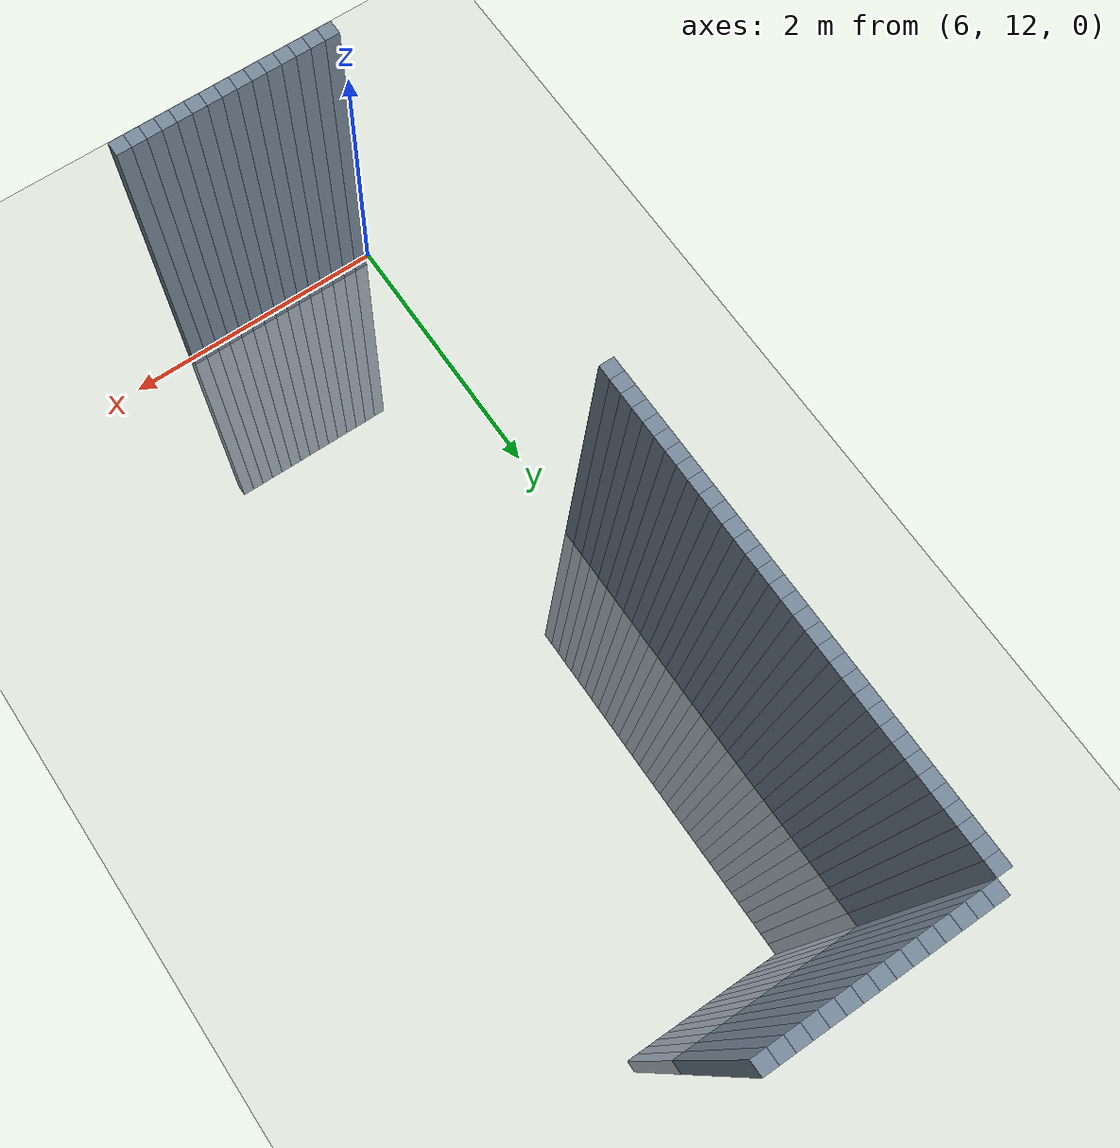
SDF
<sdf version="1.6">
 <world name="default">
  <model name="ground_plane">
   <static>1</static>
   <link name="link">
    <collision name="collision">
     <geometry><plane><normal>0 0 1</normal><size>100 100</size></plane></geometry>
     <surface><friction><ode><mu>100</mu><mu2>50</mu2></ode></friction></surface>
    </collision>
    <visual name="visual">
     <cast_shadows>0</cast_shadows>
     <geometry><plane><normal>0 0 1</normal><size>100 100</size></plane></geometry>
     <material>
      <script><uri>file://media/materials/scripts/gazebo.material</uri><name>Gazebo/Grey</name></script>
     </material>
    </visual>
   </link>
  </model>
  <model name="unit_cylinder_328">
   <static>1</static>
   <pose>6 14.7 0 0 -0 0</pose>
   <link name="link">
    <inertial>
     <mass>1</mass>
     <inertia><ixx>0.145833</ixx><ixy>0</ixy><ixz>0</ixz><iyy>0.145833</iyy><iyz>0</iyz><izz>0.125</izz></inertia>
    </inertial>
    <collision name="collision"><geometry><box><size>0.1 0.1 5</size></box></geometry></collision>
    <visual name="visual">
     <geometry><box><size>0.1 0.1 5</size></box></geometry>
     <material><ambient>0.466667 0.533333 0.6 1</ambient><diffuse>0.466667 0.533333 0.6 1</diffuse></material>
     <material>
      <script><name>Gazebo/Grey</name><uri>file://media/materials/scripts/gazebo.material</uri></script>
     </material>
    </visual>
   </link>
  </model>
  <model name="unit_cylinder_329">
   <static>1</static>
   <pose>6 14.8 0 0 -0 0</pose>
   <link name="link">
    <inertial>
     <mass>1</mass>
     <inertia><ixx>0.145833</ixx><ixy>0</ixy><ixz>0</ixz><iyy>0.145833</iyy><iyz>0</iyz><izz>0.125</izz></inertia>
    </inertial>
    <collision name="collision"><geometry><box><size>0.1 0.1 5</size></box></geometry></collision>
    <visual name="visual">
     <geometry><box><size>0.1 0.1 5</size></box></geometry>
     <material><ambient>0.466667 0.533333 0.6 1</ambient><diffuse>0.466667 0.533333 0.6 1</diffuse></material>
     <material>
      <script><name>Gazebo/Grey</name><uri>file://media/materials/scripts/gazebo.material</uri></script>
     </material>
    </visual>
   </link>
  </model>
  <model name="unit_cylinder_330">
   <static>1</static>
   <pose>6 14.9 0 0 -0 0</pose>
   <link name="link">
    <inertial>
     <mass>1</mass>
     <inertia><ixx>0.145833</ixx><ixy>0</ixy><ixz>0</ixz><iyy>0.145833</iyy><iyz>0</iyz><izz>0.125</izz></inertia>
    </inertial>
    <collision name="collision"><geometry><box><size>0.1 0.1 5</size></box></geometry></collision>
    <visual name="visual">
     <geometry><box><size>0.1 0.1 5</size></box></geometry>
     <material><ambient>0.466667 0.533333 0.6 1</ambient><diffuse>0.466667 0.533333 0.6 1</diffuse></material>
     <material>
      <script><name>Gazebo/Grey</name><uri>file://media/materials/scripts/gazebo.material</uri></script>
     </material>
    </visual>
   </link>
  </model>
  <model name="unit_cylinder_331">
   <static>1</static>
   <pose>6 15 0 0 -0 0</pose>
   <link name="link">
    <inertial>
     <mass>1</mass>
     <inertia><ixx>0.145833</ixx><ixy>0</ixy><ixz>0</ixz><iyy>0.145833</iyy><iyz>0</iyz><izz>0.125</izz></inertia>
    </inertial>
    <collision name="collision"><geometry><box><size>0.1 0.1 5</size></box></geometry></collision>
    <visual name="visual">
     <geometry><box><size>0.1 0.1 5</size></box></geometry>
     <material><ambient>0.466667 0.533333 0.6 1</ambient><diffuse>0.466667 0.533333 0.6 1</diffuse></material>
     <material>
      <script><name>Gazebo/Grey</name><uri>file://media/materials/scripts/gazebo.material</uri></script>
     </material>
    </visual>
   </link>
  </model>
  <model name="unit_cylinder_332">
   <static>1</static>
   <pose>6 15.1 0 0 -0 0</pose>
   <link name="link">
    <inertial>
     <mass>1</mass>
     <inertia><ixx>0.145833</ixx><ixy>0</ixy><ixz>0</ixz><iyy>0.145833</iyy><iyz>0</iyz><izz>0.125</izz></inertia>
    </inertial>
    <collision name="collision"><geometry><box><size>0.1 0.1 5</size></box></geometry></collision>
    <visual name="visual">
     <geometry><box><size>0.1 0.1 5</size></box></geometry>
     <material><ambient>0.466667 0.533333 0.6 1</ambient><diffuse>0.466667 0.533333 0.6 1</diffuse></material>
     <material>
      <script><name>Gazebo/Grey</name><uri>file://media/materials/scripts/gazebo.material</uri></script>
     </material>
    </visual>
   </link>
  </model>
  <model name="unit_cylinder_333">
   <static>1</static>
   <pose>6 15.2 0 0 -0 0</pose>
   <link name="link">
    <inertial>
     <mass>1</mass>
     <inertia><ixx>0.145833</ixx><ixy>0</ixy><ixz>0</ixz><iyy>0.145833</iyy><iyz>0</iyz><izz>0.125</izz></inertia>
    </inertial>
    <collision name="collision"><geometry><box><size>0.1 0.1 5</size></box></geometry></collision>
    <visual name="visual">
     <geometry><box><size>0.1 0.1 5</size></box></geometry>
     <material><ambient>0.466667 0.533333 0.6 1</ambient><diffuse>0.466667 0.533333 0.6 1</diffuse></material>
     <material>
      <script><name>Gazebo/Grey</name><uri>file://media/materials/scripts/gazebo.material</uri></script>
     </material>
    </visual>
   </link>
  </model>
  <model name="unit_cylinder_334">
   <static>1</static>
   <pose>6 15.3 0 0 -0 0</pose>
   <link name="link">
    <inertial>
     <mass>1</mass>
     <inertia><ixx>0.145833</ixx><ixy>0</ixy><ixz>0</ixz><iyy>0.145833</iyy><iyz>0</iyz><izz>0.125</izz></inertia>
    </inertial>
    <collision name="collision"><geometry><box><size>0.1 0.1 5</size></box></geometry></collision>
    <visual name="visual">
     <geometry><box><size>0.1 0.1 5</size></box></geometry>
     <material><ambient>0.466667 0.533333 0.6 1</ambient><diffuse>0.466667 0.533333 0.6 1</diffuse></material>
     <material>
      <script><name>Gazebo/Grey</name><uri>file://media/materials/scripts/gazebo.material</uri></script>
     </material>
    </visual>
   </link>
  </model>
  <model name="unit_cylinder_335">
   <static>1</static>
   <pose>6 15.4 0 0 -0 0</pose>
   <link name="link">
    <inertial>
     <mass>1</mass>
     <inertia><ixx>0.145833</ixx><ixy>0</ixy><ixz>0</ixz><iyy>0.145833</iyy><iyz>0</iyz><izz>0.125</izz></inertia>
    </inertial>
    <collision name="collision"><geometry><box><size>0.1 0.1 5</size></box></geometry></collision>
    <visual name="visual">
     <geometry><box><size>0.1 0.1 5</size></box></geometry>
     <material><ambient>0.466667 0.533333 0.6 1</ambient><diffuse>0.466667 0.533333 0.6 1</diffuse></material>
     <material>
      <script><name>Gazebo/Grey</name><uri>file://media/materials/scripts/gazebo.material</uri></script>
     </material>
    </visual>
   </link>
  </model>
  <model name="unit_cylinder_336">
   <static>1</static>
   <pose>6 15.5 0 0 -0 0</pose>
   <link name="link">
    <inertial>
     <mass>1</mass>
     <inertia><ixx>0.145833</ixx><ixy>0</ixy><ixz>0</ixz><iyy>0.145833</iyy><iyz>0</iyz><izz>0.125</izz></inertia>
    </inertial>
    <collision name="collision"><geometry><box><size>0.1 0.1 5</size></box></geometry></collision>
    <visual name="visual">
     <geometry><box><size>0.1 0.1 5</size></box></geometry>
     <material><ambient>0.466667 0.533333 0.6 1</ambient><diffuse>0.466667 0.533333 0.6 1</diffuse></material>
     <material>
      <script><name>Gazebo/Grey</name><uri>file://media/materials/scripts/gazebo.material</uri></script>
     </material>
    </visual>
   </link>
  </model>
  <model name="unit_cylinder_337">
   <static>1</static>
   <pose>6 15.6 0 0 -0 0</pose>
   <link name="link">
    <inertial>
     <mass>1</mass>
     <inertia><ixx>0.145833</ixx><ixy>0</ixy><ixz>0</ixz><iyy>0.145833</iyy><iyz>0</iyz><izz>0.125</izz></inertia>
    </inertial>
    <collision name="collision"><geometry><box><size>0.1 0.1 5</size></box></geometry></collision>
    <visual name="visual">
     <geometry><box><size>0.1 0.1 5</size></box></geometry>
     <material><ambient>0.466667 0.533333 0.6 1</ambient><diffuse>0.466667 0.533333 0.6 1</diffuse></material>
     <material>
      <script><name>Gazebo/Grey</name><uri>file://media/materials/scripts/gazebo.material</uri></script>
     </material>
    </visual>
   </link>
  </model>
  <model name="unit_cylinder_338">
   <static>1</static>
   <pose>6 15.7 0 0 -0 0</pose>
   <link name="link">
    <inertial>
     <mass>1</mass>
     <inertia><ixx>0.145833</ixx><ixy>0</ixy><ixz>0</ixz><iyy>0.145833</iyy><iyz>0</iyz><izz>0.125</izz></inertia>
    </inertial>
    <collision name="collision"><geometry><box><size>0.1 0.1 5</size></box></geometry></collision>
    <visual name="visual">
     <geometry><box><size>0.1 0.1 5</size></box></geometry>
     <material><ambient>0.466667 0.533333 0.6 1</ambient><diffuse>0.466667 0.533333 0.6 1</diffuse></material>
     <material>
      <script><name>Gazebo/Grey</name><uri>file://media/materials/scripts/gazebo.material</uri></script>
     </material>
    </visual>
   </link>
  </model>
  <model name="unit_cylinder_339">
   <static>1</static>
   <pose>6 15.8 0 0 -0 0</pose>
   <link name="link">
    <inertial>
     <mass>1</mass>
     <inertia><ixx>0.145833</ixx><ixy>0</ixy><ixz>0</ixz><iyy>0.145833</iyy><iyz>0</iyz><izz>0.125</izz></inertia>
    </inertial>
    <collision name="collision"><geometry><box><size>0.1 0.1 5</size></box></geometry></collision>
    <visual name="visual">
     <geometry><box><size>0.1 0.1 5</size></box></geometry>
     <material><ambient>0.466667 0.533333 0.6 1</ambient><diffuse>0.466667 0.533333 0.6 1</diffuse></material>
     <material>
      <script><name>Gazebo/Grey</name><uri>file://media/materials/scripts/gazebo.material</uri></script>
     </material>
    </visual>
   </link>
  </model>
  <model name="unit_cylinder_340">
   <static>1</static>
   <pose>6 15.9 0 0 -0 0</pose>
   <link name="link">
    <inertial>
     <mass>1</mass>
     <inertia><ixx>0.145833</ixx><ixy>0</ixy><ixz>0</ixz><iyy>0.145833</iyy><iyz>0</iyz><izz>0.125</izz></inertia>
    </inertial>
    <collision name="collision"><geometry><box><size>0.1 0.1 5</size></box></geometry></collision>
    <visual name="visual">
     <geometry><box><size>0.1 0.1 5</size></box></geometry>
     <material><ambient>0.466667 0.533333 0.6 1</ambient><diffuse>0.466667 0.533333 0.6 1</diffuse></material>
     <material>
      <script><name>Gazebo/Grey</name><uri>file://media/materials/scripts/gazebo.material</uri></script>
     </material>
    </visual>
   </link>
  </model>
  <model name="unit_cylinder_341">
   <static>1</static>
   <pose>6 16 0 0 -0 0</pose>
   <link name="link">
    <inertial>
     <mass>1</mass>
     <inertia><ixx>0.145833</ixx><ixy>0</ixy><ixz>0</ixz><iyy>0.145833</iyy><iyz>0</iyz><izz>0.125</izz></inertia>
    </inertial>
    <collision name="collision"><geometry><box><size>0.1 0.1 5</size></box></geometry></collision>
    <visual name="visual">
     <geometry><box><size>0.1 0.1 5</size></box></geometry>
     <material><ambient>0.466667 0.533333 0.6 1</ambient><diffuse>0.466667 0.533333 0.6 1</diffuse></material>
     <material>
      <script><name>Gazebo/Grey</name><uri>file://media/materials/scripts/gazebo.material</uri></script>
     </material>
    </visual>
   </link>
  </model>
  <model name="unit_cylinder_342">
   <static>1</static>
   <pose>6 16.1 0 0 -0 0</pose>
   <link name="link">
    <inertial>
     <mass>1</mass>
     <inertia><ixx>0.145833</ixx><ixy>0</ixy><ixz>0</ixz><iyy>0.145833</iyy><iyz>0</iyz><izz>0.125</izz></inertia>
    </inertial>
    <collision name="collision"><geometry><box><size>0.1 0.1 5</size></box></geometry></collision>
    <visual name="visual">
     <geometry><box><size>0.1 0.1 5</size></box></geometry>
     <material><ambient>0.466667 0.533333 0.6 1</ambient><diffuse>0.466667 0.533333 0.6 1</diffuse></material>
     <material>
      <script><name>Gazebo/Grey</name><uri>file://media/materials/scripts/gazebo.material</uri></script>
     </material>
    </visual>
   </link>
  </model>
  <model name="unit_cylinder_343">
   <static>1</static>
   <pose>6 16.2 0 0 -0 0</pose>
   <link name="link">
    <inertial>
     <mass>1</mass>
     <inertia><ixx>0.145833</ixx><ixy>0</ixy><ixz>0</ixz><iyy>0.145833</iyy><iyz>0</iyz><izz>0.125</izz></inertia>
    </inertial>
    <collision name="collision"><geometry><box><size>0.1 0.1 5</size></box></geometry></collision>
    <visual name="visual">
     <geometry><box><size>0.1 0.1 5</size></box></geometry>
     <material><ambient>0.466667 0.533333 0.6 1</ambient><diffuse>0.466667 0.533333 0.6 1</diffuse></material>
     <material>
      <script><name>Gazebo/Grey</name><uri>file://media/materials/scripts/gazebo.material</uri></script>
     </material>
    </visual>
   </link>
  </model>
  <model name="unit_cylinder_344">
   <static>1</static>
   <pose>6 16.3 0 0 -0 0</pose>
   <link name="link">
    <inertial>
     <mass>1</mass>
     <inertia><ixx>0.145833</ixx><ixy>0</ixy><ixz>0</ixz><iyy>0.145833</iyy><iyz>0</iyz><izz>0.125</izz></inertia>
    </inertial>
    <collision name="collision"><geometry><box><size>0.1 0.1 5</size></box></geometry></collision>
    <visual name="visual">
     <geometry><box><size>0.1 0.1 5</size></box></geometry>
     <material><ambient>0.466667 0.533333 0.6 1</ambient><diffuse>0.466667 0.533333 0.6 1</diffuse></material>
     <material>
      <script><name>Gazebo/Grey</name><uri>file://media/materials/scripts/gazebo.material</uri></script>
     </material>
    </visual>
   </link>
  </model>
  <model name="unit_cylinder_345">
   <static>1</static>
   <pose>6 16.4 0 0 -0 0</pose>
   <link name="link">
    <inertial>
     <mass>1</mass>
     <inertia><ixx>0.145833</ixx><ixy>0</ixy><ixz>0</ixz><iyy>0.145833</iyy><iyz>0</iyz><izz>0.125</izz></inertia>
    </inertial>
    <collision name="collision"><geometry><box><size>0.1 0.1 5</size></box></geometry></collision>
    <visual name="visual">
     <geometry><box><size>0.1 0.1 5</size></box></geometry>
     <material><ambient>0.466667 0.533333 0.6 1</ambient><diffuse>0.466667 0.533333 0.6 1</diffuse></material>
     <material>
      <script><name>Gazebo/Grey</name><uri>file://media/materials/scripts/gazebo.material</uri></script>
     </material>
    </visual>
   </link>
  </model>
  <model name="unit_cylinder_346">
   <static>1</static>
   <pose>6 16.5 0 0 -0 0</pose>
   <link name="link">
    <inertial>
     <mass>1</mass>
     <inertia><ixx>0.145833</ixx><ixy>0</ixy><ixz>0</ixz><iyy>0.145833</iyy><iyz>0</iyz><izz>0.125</izz></inertia>
    </inertial>
    <collision name="collision"><geometry><box><size>0.1 0.1 5</size></box></geometry></collision>
    <visual name="visual">
     <geometry><box><size>0.1 0.1 5</size></box></geometry>
     <material><ambient>0.466667 0.533333 0.6 1</ambient><diffuse>0.466667 0.533333 0.6 1</diffuse></material>
     <material>
      <script><name>Gazebo/Grey</name><uri>file://media/materials/scripts/gazebo.material</uri></script>
     </material>
    </visual>
   </link>
  </model>
  <model name="unit_cylinder_347">
   <static>1</static>
   <pose>6 16.6 0 0 -0 0</pose>
   <link name="link">
    <inertial>
     <mass>1</mass>
     <inertia><ixx>0.145833</ixx><ixy>0</ixy><ixz>0</ixz><iyy>0.145833</iyy><iyz>0</iyz><izz>0.125</izz></inertia>
    </inertial>
    <collision name="collision"><geometry><box><size>0.1 0.1 5</size></box></geometry></collision>
    <visual name="visual">
     <geometry><box><size>0.1 0.1 5</size></box></geometry>
     <material><ambient>0.466667 0.533333 0.6 1</ambient><diffuse>0.466667 0.533333 0.6 1</diffuse></material>
     <material>
      <script><name>Gazebo/Grey</name><uri>file://media/materials/scripts/gazebo.material</uri></script>
     </material>
    </visual>
   </link>
  </model>
  <model name="unit_cylinder_348">
   <static>1</static>
   <pose>6 16.7 0 0 -0 0</pose>
   <link name="link">
    <inertial>
     <mass>1</mass>
     <inertia><ixx>0.145833</ixx><ixy>0</ixy><ixz>0</ixz><iyy>0.145833</iyy><iyz>0</iyz><izz>0.125</izz></inertia>
    </inertial>
    <collision name="collision"><geometry><box><size>0.1 0.1 5</size></box></geometry></collision>
    <visual name="visual">
     <geometry><box><size>0.1 0.1 5</size></box></geometry>
     <material><ambient>0.466667 0.533333 0.6 1</ambient><diffuse>0.466667 0.533333 0.6 1</diffuse></material>
     <material>
      <script><name>Gazebo/Grey</name><uri>file://media/materials/scripts/gazebo.material</uri></script>
     </material>
    </visual>
   </link>
  </model>
  <model name="unit_cylinder_349">
   <static>1</static>
   <pose>6 16.8 0 0 -0 0</pose>
   <link name="link">
    <inertial>
     <mass>1</mass>
     <inertia><ixx>0.145833</ixx><ixy>0</ixy><ixz>0</ixz><iyy>0.145833</iyy><iyz>0</iyz><izz>0.125</izz></inertia>
    </inertial>
    <collision name="collision"><geometry><box><size>0.1 0.1 5</size></box></geometry></collision>
    <visual name="visual">
     <geometry><box><size>0.1 0.1 5</size></box></geometry>
     <material><ambient>0.466667 0.533333 0.6 1</ambient><diffuse>0.466667 0.533333 0.6 1</diffuse></material>
     <material>
      <script><name>Gazebo/Grey</name><uri>file://media/materials/scripts/gazebo.material</uri></script>
     </material>
    </visual>
   </link>
  </model>
  <model name="unit_cylinder_350">
   <static>1</static>
   <pose>6 16.9 0 0 -0 0</pose>
   <link name="link">
    <inertial>
     <mass>1</mass>
     <inertia><ixx>0.145833</ixx><ixy>0</ixy><ixz>0</ixz><iyy>0.145833</iyy><iyz>0</iyz><izz>0.125</izz></inertia>
    </inertial>
    <collision name="collision"><geometry><box><size>0.1 0.1 5</size></box></geometry></collision>
    <visual name="visual">
     <geometry><box><size>0.1 0.1 5</size></box></geometry>
     <material><ambient>0.466667 0.533333 0.6 1</ambient><diffuse>0.466667 0.533333 0.6 1</diffuse></material>
     <material>
      <script><name>Gazebo/Grey</name><uri>file://media/materials/scripts/gazebo.material</uri></script>
     </material>
    </visual>
   </link>
  </model>
  <model name="unit_cylinder_351">
   <static>1</static>
   <pose>6 17 0 0 -0 0</pose>
   <link name="link">
    <inertial>
     <mass>1</mass>
     <inertia><ixx>0.145833</ixx><ixy>0</ixy><ixz>0</ixz><iyy>0.145833</iyy><iyz>0</iyz><izz>0.125</izz></inertia>
    </inertial>
    <collision name="collision"><geometry><box><size>0.1 0.1 5</size></box></geometry></collision>
    <visual name="visual">
     <geometry><box><size>0.1 0.1 5</size></box></geometry>
     <material><ambient>0.466667 0.533333 0.6 1</ambient><diffuse>0.466667 0.533333 0.6 1</diffuse></material>
     <material>
      <script><name>Gazebo/Grey</name><uri>file://media/materials/scripts/gazebo.material</uri></script>
     </material>
    </visual>
   </link>
  </model>
  <model name="unit_cylinder_352">
   <static>1</static>
   <pose>6 17.1 0 0 -0 0</pose>
   <link name="link">
    <inertial>
     <mass>1</mass>
     <inertia><ixx>0.145833</ixx><ixy>0</ixy><ixz>0</ixz><iyy>0.145833</iyy><iyz>0</iyz><izz>0.125</izz></inertia>
    </inertial>
    <collision name="collision"><geometry><box><size>0.1 0.1 5</size></box></geometry></collision>
    <visual name="visual">
     <geometry><box><size>0.1 0.1 5</size></box></geometry>
     <material><ambient>0.466667 0.533333 0.6 1</ambient><diffuse>0.466667 0.533333 0.6 1</diffuse></material>
     <material>
      <script><name>Gazebo/Grey</name><uri>file://media/materials/scripts/gazebo.material</uri></script>
     </material>
    </visual>
   </link>
  </model>
  <model name="unit_cylinder_353">
   <static>1</static>
   <pose>6 17.2 0 0 -0 0</pose>
   <link name="link">
    <inertial>
     <mass>1</mass>
     <inertia><ixx>0.145833</ixx><ixy>0</ixy><ixz>0</ixz><iyy>0.145833</iyy><iyz>0</iyz><izz>0.125</izz></inertia>
    </inertial>
    <collision name="collision"><geometry><box><size>0.1 0.1 5</size></box></geometry></collision>
    <visual name="visual">
     <geometry><box><size>0.1 0.1 5</size></box></geometry>
     <material><ambient>0.466667 0.533333 0.6 1</ambient><diffuse>0.466667 0.533333 0.6 1</diffuse></material>
     <material>
      <script><name>Gazebo/Grey</name><uri>file://media/materials/scripts/gazebo.material</uri></script>
     </material>
    </visual>
   </link>
  </model>
  <model name="unit_cylinder_354">
   <static>1</static>
   <pose>6 17.3 0 0 -0 0</pose>
   <link name="link">
    <inertial>
     <mass>1</mass>
     <inertia><ixx>0.145833</ixx><ixy>0</ixy><ixz>0</ixz><iyy>0.145833</iyy><iyz>0</iyz><izz>0.125</izz></inertia>
    </inertial>
    <collision name="collision"><geometry><box><size>0.1 0.1 5</size></box></geometry></collision>
    <visual name="visual">
     <geometry><box><size>0.1 0.1 5</size></box></geometry>
     <material><ambient>0.466667 0.533333 0.6 1</ambient><diffuse>0.466667 0.533333 0.6 1</diffuse></material>
     <material>
      <script><name>Gazebo/Grey</name><uri>file://media/materials/scripts/gazebo.material</uri></script>
     </material>
    </visual>
   </link>
  </model>
  <model name="unit_cylinder_355">
   <static>1</static>
   <pose>6 17.4 0 0 -0 0</pose>
   <link name="link">
    <inertial>
     <mass>1</mass>
     <inertia><ixx>0.145833</ixx><ixy>0</ixy><ixz>0</ixz><iyy>0.145833</iyy><iyz>0</iyz><izz>0.125</izz></inertia>
    </inertial>
    <collision name="collision"><geometry><box><size>0.1 0.1 5</size></box></geometry></collision>
    <visual name="visual">
     <geometry><box><size>0.1 0.1 5</size></box></geometry>
     <material><ambient>0.466667 0.533333 0.6 1</ambient><diffuse>0.466667 0.533333 0.6 1</diffuse></material>
     <material>
      <script><name>Gazebo/Grey</name><uri>file://media/materials/scripts/gazebo.material</uri></script>
     </material>
    </visual>
   </link>
  </model>
  <model name="unit_cylinder_356">
   <static>1</static>
   <pose>6 17.5 0 0 -0 0</pose>
   <link name="link">
    <inertial>
     <mass>1</mass>
     <inertia><ixx>0.145833</ixx><ixy>0</ixy><ixz>0</ixz><iyy>0.145833</iyy><iyz>0</iyz><izz>0.125</izz></inertia>
    </inertial>
    <collision name="collision"><geometry><box><size>0.1 0.1 5</size></box></geometry></collision>
    <visual name="visual">
     <geometry><box><size>0.1 0.1 5</size></box></geometry>
     <material><ambient>0.466667 0.533333 0.6 1</ambient><diffuse>0.466667 0.533333 0.6 1</diffuse></material>
     <material>
      <script><name>Gazebo/Grey</name><uri>file://media/materials/scripts/gazebo.material</uri></script>
     </material>
    </visual>
   </link>
  </model>
  <model name="unit_cylinder_357">
   <static>1</static>
   <pose>6 17.6 0 0 -0 0</pose>
   <link name="link">
    <inertial>
     <mass>1</mass>
     <inertia><ixx>0.145833</ixx><ixy>0</ixy><ixz>0</ixz><iyy>0.145833</iyy><iyz>0</iyz><izz>0.125</izz></inertia>
    </inertial>
    <collision name="collision"><geometry><box><size>0.1 0.1 5</size></box></geometry></collision>
    <visual name="visual">
     <geometry><box><size>0.1 0.1 5</size></box></geometry>
     <material><ambient>0.466667 0.533333 0.6 1</ambient><diffuse>0.466667 0.533333 0.6 1</diffuse></material>
     <material>
      <script><name>Gazebo/Grey</name><uri>file://media/materials/scripts/gazebo.material</uri></script>
     </material>
    </visual>
   </link>
  </model>
  <model name="unit_cylinder_358">
   <static>1</static>
   <pose>6 17.7 0 0 -0 0</pose>
   <link name="link">
    <inertial>
     <mass>1</mass>
     <inertia><ixx>0.145833</ixx><ixy>0</ixy><ixz>0</ixz><iyy>0.145833</iyy><iyz>0</iyz><izz>0.125</izz></inertia>
    </inertial>
    <collision name="collision"><geometry><box><size>0.1 0.1 5</size></box></geometry></collision>
    <visual name="visual">
     <geometry><box><size>0.1 0.1 5</size></box></geometry>
     <material><ambient>0.466667 0.533333 0.6 1</ambient><diffuse>0.466667 0.533333 0.6 1</diffuse></material>
     <material>
      <script><name>Gazebo/Grey</name><uri>file://media/materials/scripts/gazebo.material</uri></script>
     </material>
    </visual>
   </link>
  </model>
  <model name="unit_cylinder_359">
   <static>1</static>
   <pose>6 17.8 0 0 -0 0</pose>
   <link name="link">
    <inertial>
     <mass>1</mass>
     <inertia><ixx>0.145833</ixx><ixy>0</ixy><ixz>0</ixz><iyy>0.145833</iyy><iyz>0</iyz><izz>0.125</izz></inertia>
    </inertial>
    <collision name="collision"><geometry><box><size>0.1 0.1 5</size></box></geometry></collision>
    <visual name="visual">
     <geometry><box><size>0.1 0.1 5</size></box></geometry>
     <material><ambient>0.466667 0.533333 0.6 1</ambient><diffuse>0.466667 0.533333 0.6 1</diffuse></material>
     <material>
      <script><name>Gazebo/Grey</name><uri>file://media/materials/scripts/gazebo.material</uri></script>
     </material>
    </visual>
   </link>
  </model>
  <model name="unit_cylinder_360">
   <static>1</static>
   <pose>6 17.9 0 0 -0 0</pose>
   <link name="link">
    <inertial>
     <mass>1</mass>
     <inertia><ixx>0.145833</ixx><ixy>0</ixy><ixz>0</ixz><iyy>0.145833</iyy><iyz>0</iyz><izz>0.125</izz></inertia>
    </inertial>
    <collision name="collision"><geometry><box><size>0.1 0.1 5</size></box></geometry></collision>
    <visual name="visual">
     <geometry><box><size>0.1 0.1 5</size></box></geometry>
     <material><ambient>0.466667 0.533333 0.6 1</ambient><diffuse>0.466667 0.533333 0.6 1</diffuse></material>
     <material>
      <script><name>Gazebo/Grey</name><uri>file://media/materials/scripts/gazebo.material</uri></script>
     </material>
    </visual>
   </link>
  </model>
  <model name="unit_cylinder_364">
   <static>1</static>
   <pose>6.1 12 0 0 -0 0</pose>
   <link name="link">
    <inertial>
     <mass>1</mass>
     <inertia><ixx>0.145833</ixx><ixy>0</ixy><ixz>0</ixz><iyy>0.145833</iyy><iyz>0</iyz><izz>0.125</izz></inertia>
    </inertial>
    <collision name="collision"><geometry><box><size>0.1 0.1 5</size></box></geometry></collision>
    <visual name="visual">
     <geometry><box><size>0.1 0.1 5</size></box></geometry>
     <material><ambient>0.466667 0.533333 0.6 1</ambient><diffuse>0.466667 0.533333 0.6 1</diffuse></material>
     <material>
      <script><name>Gazebo/Grey</name><uri>file://media/materials/scripts/gazebo.material</uri></script>
     </material>
    </visual>
   </link>
  </model>
  <model name="unit_cylinder_365">
   <static>1</static>
   <pose>6.1 18 0 0 -0 0</pose>
   <link name="link">
    <inertial>
     <mass>1</mass>
     <inertia><ixx>0.145833</ixx><ixy>0</ixy><ixz>0</ixz><iyy>0.145833</iyy><iyz>0</iyz><izz>0.125</izz></inertia>
    </inertial>
    <collision name="collision"><geometry><box><size>0.1 0.1 5</size></box></geometry></collision>
    <visual name="visual">
     <geometry><box><size>0.1 0.1 5</size></box></geometry>
     <material><ambient>0.466667 0.533333 0.6 1</ambient><diffuse>0.466667 0.533333 0.6 1</diffuse></material>
     <material>
      <script><name>Gazebo/Grey</name><uri>file://media/materials/scripts/gazebo.material</uri></script>
     </material>
    </visual>
   </link>
  </model>
  <model name="unit_cylinder_368">
   <static>1</static>
   <pose>6.2 12 0 0 -0 0</pose>
   <link name="link">
    <inertial>
     <mass>1</mass>
     <inertia><ixx>0.145833</ixx><ixy>0</ixy><ixz>0</ixz><iyy>0.145833</iyy><iyz>0</iyz><izz>0.125</izz></inertia>
    </inertial>
    <collision name="collision"><geometry><box><size>0.1 0.1 5</size></box></geometry></collision>
    <visual name="visual">
     <geometry><box><size>0.1 0.1 5</size></box></geometry>
     <material><ambient>0.466667 0.533333 0.6 1</ambient><diffuse>0.466667 0.533333 0.6 1</diffuse></material>
     <material>
      <script><name>Gazebo/Grey</name><uri>file://media/materials/scripts/gazebo.material</uri></script>
     </material>
    </visual>
   </link>
  </model>
  <model name="unit_cylinder_369">
   <static>1</static>
   <pose>6.2 18 0 0 -0 0</pose>
   <link name="link">
    <inertial>
     <mass>1</mass>
     <inertia><ixx>0.145833</ixx><ixy>0</ixy><ixz>0</ixz><iyy>0.145833</iyy><iyz>0</iyz><izz>0.125</izz></inertia>
    </inertial>
    <collision name="collision"><geometry><box><size>0.1 0.1 5</size></box></geometry></collision>
    <visual name="visual">
     <geometry><box><size>0.1 0.1 5</size></box></geometry>
     <material><ambient>0.466667 0.533333 0.6 1</ambient><diffuse>0.466667 0.533333 0.6 1</diffuse></material>
     <material>
      <script><name>Gazebo/Grey</name><uri>file://media/materials/scripts/gazebo.material</uri></script>
     </material>
    </visual>
   </link>
  </model>
  <model name="unit_cylinder_372">
   <static>1</static>
   <pose>6.3 12 0 0 -0 0</pose>
   <link name="link">
    <inertial>
     <mass>1</mass>
     <inertia><ixx>0.145833</ixx><ixy>0</ixy><ixz>0</ixz><iyy>0.145833</iyy><iyz>0</iyz><izz>0.125</izz></inertia>
    </inertial>
    <collision name="collision"><geometry><box><size>0.1 0.1 5</size></box></geometry></collision>
    <visual name="visual">
     <geometry><box><size>0.1 0.1 5</size></box></geometry>
     <material><ambient>0.466667 0.533333 0.6 1</ambient><diffuse>0.466667 0.533333 0.6 1</diffuse></material>
     <material>
      <script><name>Gazebo/Grey</name><uri>file://media/materials/scripts/gazebo.material</uri></script>
     </material>
    </visual>
   </link>
  </model>
  <model name="unit_cylinder_373">
   <static>1</static>
   <pose>6.3 18 0 0 -0 0</pose>
   <link name="link">
    <inertial>
     <mass>1</mass>
     <inertia><ixx>0.145833</ixx><ixy>0</ixy><ixz>0</ixz><iyy>0.145833</iyy><iyz>0</iyz><izz>0.125</izz></inertia>
    </inertial>
    <collision name="collision"><geometry><box><size>0.1 0.1 5</size></box></geometry></collision>
    <visual name="visual">
     <geometry><box><size>0.1 0.1 5</size></box></geometry>
     <material><ambient>0.466667 0.533333 0.6 1</ambient><diffuse>0.466667 0.533333 0.6 1</diffuse></material>
     <material>
      <script><name>Gazebo/Grey</name><uri>file://media/materials/scripts/gazebo.material</uri></script>
     </material>
    </visual>
   </link>
  </model>
  <model name="unit_cylinder_376">
   <static>1</static>
   <pose>6.4 12 0 0 -0 0</pose>
   <link name="link">
    <inertial>
     <mass>1</mass>
     <inertia><ixx>0.145833</ixx><ixy>0</ixy><ixz>0</ixz><iyy>0.145833</iyy><iyz>0</iyz><izz>0.125</izz></inertia>
    </inertial>
    <collision name="collision"><geometry><box><size>0.1 0.1 5</size></box></geometry></collision>
    <visual name="visual">
     <geometry><box><size>0.1 0.1 5</size></box></geometry>
     <material><ambient>0.466667 0.533333 0.6 1</ambient><diffuse>0.466667 0.533333 0.6 1</diffuse></material>
     <material>
      <script><name>Gazebo/Grey</name><uri>file://media/materials/scripts/gazebo.material</uri></script>
     </material>
    </visual>
   </link>
  </model>
  <model name="unit_cylinder_377">
   <static>1</static>
   <pose>6.4 18 0 0 -0 0</pose>
   <link name="link">
    <inertial>
     <mass>1</mass>
     <inertia><ixx>0.145833</ixx><ixy>0</ixy><ixz>0</ixz><iyy>0.145833</iyy><iyz>0</iyz><izz>0.125</izz></inertia>
    </inertial>
    <collision name="collision"><geometry><box><size>0.1 0.1 5</size></box></geometry></collision>
    <visual name="visual">
     <geometry><box><size>0.1 0.1 5</size></box></geometry>
     <material><ambient>0.466667 0.533333 0.6 1</ambient><diffuse>0.466667 0.533333 0.6 1</diffuse></material>
     <material>
      <script><name>Gazebo/Grey</name><uri>file://media/materials/scripts/gazebo.material</uri></script>
     </material>
    </visual>
   </link>
  </model>
  <model name="unit_cylinder_380">
   <static>1</static>
   <pose>6.5 12 0 0 -0 0</pose>
   <link name="link">
    <inertial>
     <mass>1</mass>
     <inertia><ixx>0.145833</ixx><ixy>0</ixy><ixz>0</ixz><iyy>0.145833</iyy><iyz>0</iyz><izz>0.125</izz></inertia>
    </inertial>
    <collision name="collision"><geometry><box><size>0.1 0.1 5</size></box></geometry></collision>
    <visual name="visual">
     <geometry><box><size>0.1 0.1 5</size></box></geometry>
     <material><ambient>0.466667 0.533333 0.6 1</ambient><diffuse>0.466667 0.533333 0.6 1</diffuse></material>
     <material>
      <script><name>Gazebo/Grey</name><uri>file://media/materials/scripts/gazebo.material</uri></script>
     </material>
    </visual>
   </link>
  </model>
  <model name="unit_cylinder_381">
   <static>1</static>
   <pose>6.5 18 0 0 -0 0</pose>
   <link name="link">
    <inertial>
     <mass>1</mass>
     <inertia><ixx>0.145833</ixx><ixy>0</ixy><ixz>0</ixz><iyy>0.145833</iyy><iyz>0</iyz><izz>0.125</izz></inertia>
    </inertial>
    <collision name="collision"><geometry><box><size>0.1 0.1 5</size></box></geometry></collision>
    <visual name="visual">
     <geometry><box><size>0.1 0.1 5</size></box></geometry>
     <material><ambient>0.466667 0.533333 0.6 1</ambient><diffuse>0.466667 0.533333 0.6 1</diffuse></material>
     <material>
      <script><name>Gazebo/Grey</name><uri>file://media/materials/scripts/gazebo.material</uri></script>
     </material>
    </visual>
   </link>
  </model>
  <model name="unit_cylinder_384">
   <static>1</static>
   <pose>6.6 12 0 0 -0 0</pose>
   <link name="link">
    <inertial>
     <mass>1</mass>
     <inertia><ixx>0.145833</ixx><ixy>0</ixy><ixz>0</ixz><iyy>0.145833</iyy><iyz>0</iyz><izz>0.125</izz></inertia>
    </inertial>
    <collision name="collision"><geometry><box><size>0.1 0.1 5</size></box></geometry></collision>
    <visual name="visual">
     <geometry><box><size>0.1 0.1 5</size></box></geometry>
     <material><ambient>0.466667 0.533333 0.6 1</ambient><diffuse>0.466667 0.533333 0.6 1</diffuse></material>
     <material>
      <script><name>Gazebo/Grey</name><uri>file://media/materials/scripts/gazebo.material</uri></script>
     </material>
    </visual>
   </link>
  </model>
  <model name="unit_cylinder_385">
   <static>1</static>
   <pose>6.6 18 0 0 -0 0</pose>
   <link name="link">
    <inertial>
     <mass>1</mass>
     <inertia><ixx>0.145833</ixx><ixy>0</ixy><ixz>0</ixz><iyy>0.145833</iyy><iyz>0</iyz><izz>0.125</izz></inertia>
    </inertial>
    <collision name="collision"><geometry><box><size>0.1 0.1 5</size></box></geometry></collision>
    <visual name="visual">
     <geometry><box><size>0.1 0.1 5</size></box></geometry>
     <material><ambient>0.466667 0.533333 0.6 1</ambient><diffuse>0.466667 0.533333 0.6 1</diffuse></material>
     <material>
      <script><name>Gazebo/Grey</name><uri>file://media/materials/scripts/gazebo.material</uri></script>
     </material>
    </visual>
   </link>
  </model>
  <model name="unit_cylinder_388">
   <static>1</static>
   <pose>6.7 12 0 0 -0 0</pose>
   <link name="link">
    <inertial>
     <mass>1</mass>
     <inertia><ixx>0.145833</ixx><ixy>0</ixy><ixz>0</ixz><iyy>0.145833</iyy><iyz>0</iyz><izz>0.125</izz></inertia>
    </inertial>
    <collision name="collision"><geometry><box><size>0.1 0.1 5</size></box></geometry></collision>
    <visual name="visual">
     <geometry><box><size>0.1 0.1 5</size></box></geometry>
     <material><ambient>0.466667 0.533333 0.6 1</ambient><diffuse>0.466667 0.533333 0.6 1</diffuse></material>
     <material>
      <script><name>Gazebo/Grey</name><uri>file://media/materials/scripts/gazebo.material</uri></script>
     </material>
    </visual>
   </link>
  </model>
  <model name="unit_cylinder_389">
   <static>1</static>
   <pose>6.7 18 0 0 -0 0</pose>
   <link name="link">
    <inertial>
     <mass>1</mass>
     <inertia><ixx>0.145833</ixx><ixy>0</ixy><ixz>0</ixz><iyy>0.145833</iyy><iyz>0</iyz><izz>0.125</izz></inertia>
    </inertial>
    <collision name="collision"><geometry><box><size>0.1 0.1 5</size></box></geometry></collision>
    <visual name="visual">
     <geometry><box><size>0.1 0.1 5</size></box></geometry>
     <material><ambient>0.466667 0.533333 0.6 1</ambient><diffuse>0.466667 0.533333 0.6 1</diffuse></material>
     <material>
      <script><name>Gazebo/Grey</name><uri>file://media/materials/scripts/gazebo.material</uri></script>
     </material>
    </visual>
   </link>
  </model>
  <model name="unit_cylinder_392">
   <static>1</static>
   <pose>6.8 12 0 0 -0 0</pose>
   <link name="link">
    <inertial>
     <mass>1</mass>
     <inertia><ixx>0.145833</ixx><ixy>0</ixy><ixz>0</ixz><iyy>0.145833</iyy><iyz>0</iyz><izz>0.125</izz></inertia>
    </inertial>
    <collision name="collision"><geometry><box><size>0.1 0.1 5</size></box></geometry></collision>
    <visual name="visual">
     <geometry><box><size>0.1 0.1 5</size></box></geometry>
     <material><ambient>0.466667 0.533333 0.6 1</ambient><diffuse>0.466667 0.533333 0.6 1</diffuse></material>
     <material>
      <script><name>Gazebo/Grey</name><uri>file://media/materials/scripts/gazebo.material</uri></script>
     </material>
    </visual>
   </link>
  </model>
  <model name="unit_cylinder_393">
   <static>1</static>
   <pose>6.8 18 0 0 -0 0</pose>
   <link name="link">
    <inertial>
     <mass>1</mass>
     <inertia><ixx>0.145833</ixx><ixy>0</ixy><ixz>0</ixz><iyy>0.145833</iyy><iyz>0</iyz><izz>0.125</izz></inertia>
    </inertial>
    <collision name="collision"><geometry><box><size>0.1 0.1 5</size></box></geometry></collision>
    <visual name="visual">
     <geometry><box><size>0.1 0.1 5</size></box></geometry>
     <material><ambient>0.466667 0.533333 0.6 1</ambient><diffuse>0.466667 0.533333 0.6 1</diffuse></material>
     <material>
      <script><name>Gazebo/Grey</name><uri>file://media/materials/scripts/gazebo.material</uri></script>
     </material>
    </visual>
   </link>
  </model>
  <model name="unit_cylinder_396">
   <static>1</static>
   <pose>6.9 12 0 0 -0 0</pose>
   <link name="link">
    <inertial>
     <mass>1</mass>
     <inertia><ixx>0.145833</ixx><ixy>0</ixy><ixz>0</ixz><iyy>0.145833</iyy><iyz>0</iyz><izz>0.125</izz></inertia>
    </inertial>
    <collision name="collision"><geometry><box><size>0.1 0.1 5</size></box></geometry></collision>
    <visual name="visual">
     <geometry><box><size>0.1 0.1 5</size></box></geometry>
     <material><ambient>0.466667 0.533333 0.6 1</ambient><diffuse>0.466667 0.533333 0.6 1</diffuse></material>
     <material>
      <script><name>Gazebo/Grey</name><uri>file://media/materials/scripts/gazebo.material</uri></script>
     </material>
    </visual>
   </link>
  </model>
  <model name="unit_cylinder_397">
   <static>1</static>
   <pose>6.9 18 0 0 -0 0</pose>
   <link name="link">
    <inertial>
     <mass>1</mass>
     <inertia><ixx>0.145833</ixx><ixy>0</ixy><ixz>0</ixz><iyy>0.145833</iyy><iyz>0</iyz><izz>0.125</izz></inertia>
    </inertial>
    <collision name="collision"><geometry><box><size>0.1 0.1 5</size></box></geometry></collision>
    <visual name="visual">
     <geometry><box><size>0.1 0.1 5</size></box></geometry>
     <material><ambient>0.466667 0.533333 0.6 1</ambient><diffuse>0.466667 0.533333 0.6 1</diffuse></material>
     <material>
      <script><name>Gazebo/Grey</name><uri>file://media/materials/scripts/gazebo.material</uri></script>
     </material>
    </visual>
   </link>
  </model>
  <model name="unit_cylinder_400">
   <static>1</static>
   <pose>7 12 0 0 -0 0</pose>
   <link name="link">
    <inertial>
     <mass>1</mass>
     <inertia><ixx>0.145833</ixx><ixy>0</ixy><ixz>0</ixz><iyy>0.145833</iyy><iyz>0</iyz><izz>0.125</izz></inertia>
    </inertial>
    <collision name="collision"><geometry><box><size>0.1 0.1 5</size></box></geometry></collision>
    <visual name="visual">
     <geometry><box><size>0.1 0.1 5</size></box></geometry>
     <material><ambient>0.466667 0.533333 0.6 1</ambient><diffuse>0.466667 0.533333 0.6 1</diffuse></material>
     <material>
      <script><name>Gazebo/Grey</name><uri>file://media/materials/scripts/gazebo.material</uri></script>
     </material>
    </visual>
   </link>
  </model>
  <model name="unit_cylinder_401">
   <static>1</static>
   <pose>7 18 0 0 -0 0</pose>
   <link name="link">
    <inertial>
     <mass>1</mass>
     <inertia><ixx>0.145833</ixx><ixy>0</ixy><ixz>0</ixz><iyy>0.145833</iyy><iyz>0</iyz><izz>0.125</izz></inertia>
    </inertial>
    <collision name="collision"><geometry><box><size>0.1 0.1 5</size></box></geometry></collision>
    <visual name="visual">
     <geometry><box><size>0.1 0.1 5</size></box></geometry>
     <material><ambient>0.466667 0.533333 0.6 1</ambient><diffuse>0.466667 0.533333 0.6 1</diffuse></material>
     <material>
      <script><name>Gazebo/Grey</name><uri>file://media/materials/scripts/gazebo.material</uri></script>
     </material>
    </visual>
   </link>
  </model>
  <model name="unit_cylinder_404">
   <static>1</static>
   <pose>7.1 12 0 0 -0 0</pose>
   <link name="link">
    <inertial>
     <mass>1</mass>
     <inertia><ixx>0.145833</ixx><ixy>0</ixy><ixz>0</ixz><iyy>0.145833</iyy><iyz>0</iyz><izz>0.125</izz></inertia>
    </inertial>
    <collision name="collision"><geometry><box><size>0.1 0.1 5</size></box></geometry></collision>
    <visual name="visual">
     <geometry><box><size>0.1 0.1 5</size></box></geometry>
     <material><ambient>0.466667 0.533333 0.6 1</ambient><diffuse>0.466667 0.533333 0.6 1</diffuse></material>
     <material>
      <script><name>Gazebo/Grey</name><uri>file://media/materials/scripts/gazebo.material</uri></script>
     </material>
    </visual>
   </link>
  </model>
  <model name="unit_cylinder_405">
   <static>1</static>
   <pose>7.1 18 0 0 -0 0</pose>
   <link name="link">
    <inertial>
     <mass>1</mass>
     <inertia><ixx>0.145833</ixx><ixy>0</ixy><ixz>0</ixz><iyy>0.145833</iyy><iyz>0</iyz><izz>0.125</izz></inertia>
    </inertial>
    <collision name="collision"><geometry><box><size>0.1 0.1 5</size></box></geometry></collision>
    <visual name="visual">
     <geometry><box><size>0.1 0.1 5</size></box></geometry>
     <material><ambient>0.466667 0.533333 0.6 1</ambient><diffuse>0.466667 0.533333 0.6 1</diffuse></material>
     <material>
      <script><name>Gazebo/Grey</name><uri>file://media/materials/scripts/gazebo.material</uri></script>
     </material>
    </visual>
   </link>
  </model>
  <model name="unit_cylinder_408">
   <static>1</static>
   <pose>7.2 12 0 0 -0 0</pose>
   <link name="link">
    <inertial>
     <mass>1</mass>
     <inertia><ixx>0.145833</ixx><ixy>0</ixy><ixz>0</ixz><iyy>0.145833</iyy><iyz>0</iyz><izz>0.125</izz></inertia>
    </inertial>
    <collision name="collision"><geometry><box><size>0.1 0.1 5</size></box></geometry></collision>
    <visual name="visual">
     <geometry><box><size>0.1 0.1 5</size></box></geometry>
     <material><ambient>0.466667 0.533333 0.6 1</ambient><diffuse>0.466667 0.533333 0.6 1</diffuse></material>
     <material>
      <script><name>Gazebo/Grey</name><uri>file://media/materials/scripts/gazebo.material</uri></script>
     </material>
    </visual>
   </link>
  </model>
  <model name="unit_cylinder_409">
   <static>1</static>
   <pose>7.2 18 0 0 -0 0</pose>
   <link name="link">
    <inertial>
     <mass>1</mass>
     <inertia><ixx>0.145833</ixx><ixy>0</ixy><ixz>0</ixz><iyy>0.145833</iyy><iyz>0</iyz><izz>0.125</izz></inertia>
    </inertial>
    <collision name="collision"><geometry><box><size>0.1 0.1 5</size></box></geometry></collision>
    <visual name="visual">
     <geometry><box><size>0.1 0.1 5</size></box></geometry>
     <material><ambient>0.466667 0.533333 0.6 1</ambient><diffuse>0.466667 0.533333 0.6 1</diffuse></material>
     <material>
      <script><name>Gazebo/Grey</name><uri>file://media/materials/scripts/gazebo.material</uri></script>
     </material>
    </visual>
   </link>
  </model>
  <model name="unit_cylinder_412">
   <static>1</static>
   <pose>7.3 12 0 0 -0 0</pose>
   <link name="link">
    <inertial>
     <mass>1</mass>
     <inertia><ixx>0.145833</ixx><ixy>0</ixy><ixz>0</ixz><iyy>0.145833</iyy><iyz>0</iyz><izz>0.125</izz></inertia>
    </inertial>
    <collision name="collision"><geometry><box><size>0.1 0.1 5</size></box></geometry></collision>
    <visual name="visual">
     <geometry><box><size>0.1 0.1 5</size></box></geometry>
     <material><ambient>0.466667 0.533333 0.6 1</ambient><diffuse>0.466667 0.533333 0.6 1</diffuse></material>
     <material>
      <script><name>Gazebo/Grey</name><uri>file://media/materials/scripts/gazebo.material</uri></script>
     </material>
    </visual>
   </link>
  </model>
  <model name="unit_cylinder_413">
   <static>1</static>
   <pose>7.3 18 0 0 -0 0</pose>
   <link name="link">
    <inertial>
     <mass>1</mass>
     <inertia><ixx>0.145833</ixx><ixy>0</ixy><ixz>0</ixz><iyy>0.145833</iyy><iyz>0</iyz><izz>0.125</izz></inertia>
    </inertial>
    <collision name="collision"><geometry><box><size>0.1 0.1 5</size></box></geometry></collision>
    <visual name="visual">
     <geometry><box><size>0.1 0.1 5</size></box></geometry>
     <material><ambient>0.466667 0.533333 0.6 1</ambient><diffuse>0.466667 0.533333 0.6 1</diffuse></material>
     <material>
      <script><name>Gazebo/Grey</name><uri>file://media/materials/scripts/gazebo.material</uri></script>
     </material>
    </visual>
   </link>
  </model>
  <model name="unit_cylinder_416">
   <static>1</static>
   <pose>7.4 12 0 0 -0 0</pose>
   <link name="link">
    <inertial>
     <mass>1</mass>
     <inertia><ixx>0.145833</ixx><ixy>0</ixy><ixz>0</ixz><iyy>0.145833</iyy><iyz>0</iyz><izz>0.125</izz></inertia>
    </inertial>
    <collision name="collision"><geometry><box><size>0.1 0.1 5</size></box></geometry></collision>
    <visual name="visual">
     <geometry><box><size>0.1 0.1 5</size></box></geometry>
     <material><ambient>0.466667 0.533333 0.6 1</ambient><diffuse>0.466667 0.533333 0.6 1</diffuse></material>
     <material>
      <script><name>Gazebo/Grey</name><uri>file://media/materials/scripts/gazebo.material</uri></script>
     </material>
    </visual>
   </link>
  </model>
  <model name="unit_cylinder_417">
   <static>1</static>
   <pose>7.4 18 0 0 -0 0</pose>
   <link name="link">
    <inertial>
     <mass>1</mass>
     <inertia><ixx>0.145833</ixx><ixy>0</ixy><ixz>0</ixz><iyy>0.145833</iyy><iyz>0</iyz><izz>0.125</izz></inertia>
    </inertial>
    <collision name="collision"><geometry><box><size>0.1 0.1 5</size></box></geometry></collision>
    <visual name="visual">
     <geometry><box><size>0.1 0.1 5</size></box></geometry>
     <material><ambient>0.466667 0.533333 0.6 1</ambient><diffuse>0.466667 0.533333 0.6 1</diffuse></material>
     <material>
      <script><name>Gazebo/Grey</name><uri>file://media/materials/scripts/gazebo.material</uri></script>
     </material>
    </visual>
   </link>
  </model>
  <model name="unit_cylinder_420">
   <static>1</static>
   <pose>7.5 12 0 0 -0 0</pose>
   <link name="link">
    <inertial>
     <mass>1</mass>
     <inertia><ixx>0.145833</ixx><ixy>0</ixy><ixz>0</ixz><iyy>0.145833</iyy><iyz>0</iyz><izz>0.125</izz></inertia>
    </inertial>
    <collision name="collision"><geometry><box><size>0.1 0.1 5</size></box></geometry></collision>
    <visual name="visual">
     <geometry><box><size>0.1 0.1 5</size></box></geometry>
     <material><ambient>0.466667 0.533333 0.6 1</ambient><diffuse>0.466667 0.533333 0.6 1</diffuse></material>
     <material>
      <script><name>Gazebo/Grey</name><uri>file://media/materials/scripts/gazebo.material</uri></script>
     </material>
    </visual>
   </link>
  </model>
  <model name="unit_cylinder_421">
   <static>1</static>
   <pose>7.5 18 0 0 -0 0</pose>
   <link name="link">
    <inertial>
     <mass>1</mass>
     <inertia><ixx>0.145833</ixx><ixy>0</ixy><ixz>0</ixz><iyy>0.145833</iyy><iyz>0</iyz><izz>0.125</izz></inertia>
    </inertial>
    <collision name="collision"><geometry><box><size>0.1 0.1 5</size></box></geometry></collision>
    <visual name="visual">
     <geometry><box><size>0.1 0.1 5</size></box></geometry>
     <material><ambient>0.466667 0.533333 0.6 1</ambient><diffuse>0.466667 0.533333 0.6 1</diffuse></material>
     <material>
      <script><name>Gazebo/Grey</name><uri>file://media/materials/scripts/gazebo.material</uri></script>
     </material>
    </visual>
   </link>
  </model>
 </world>
</sdf>
